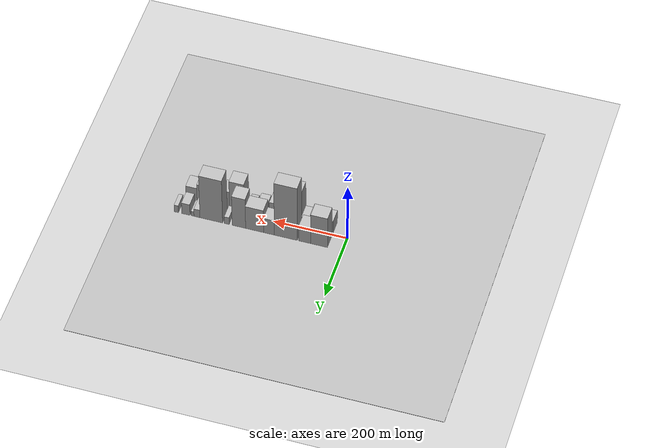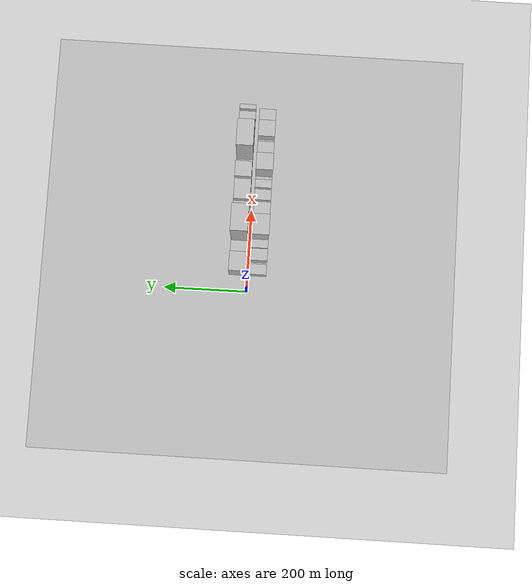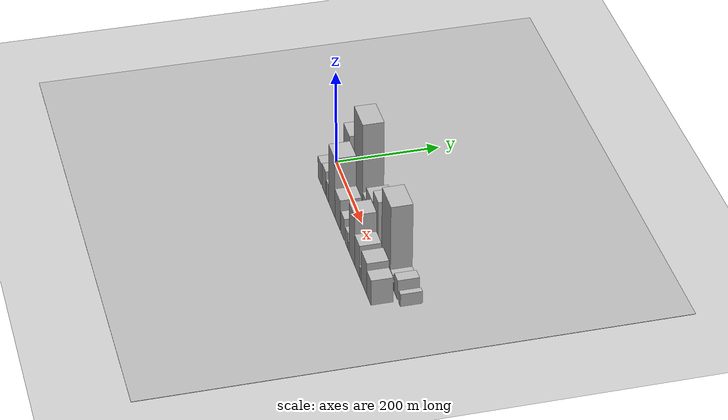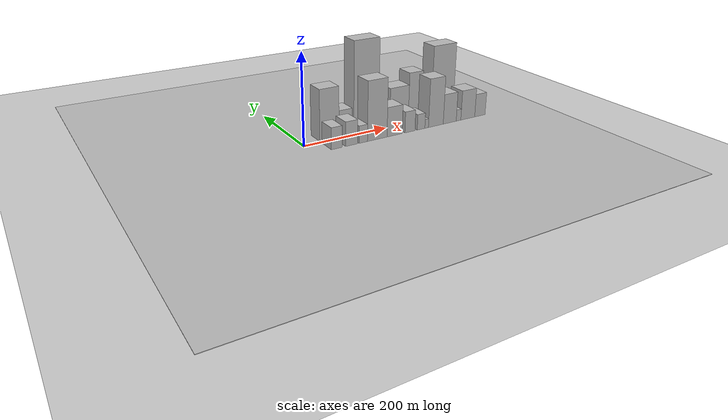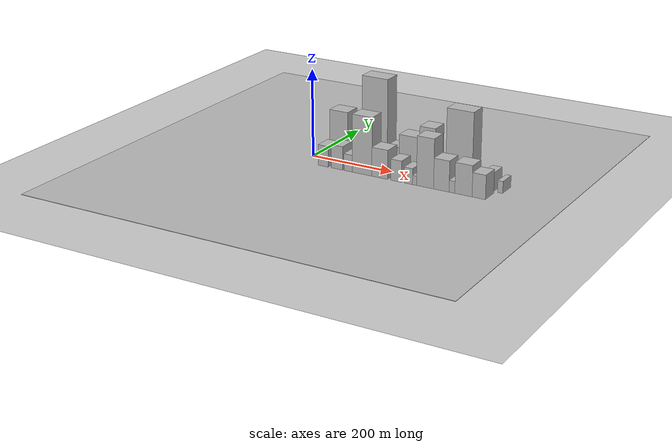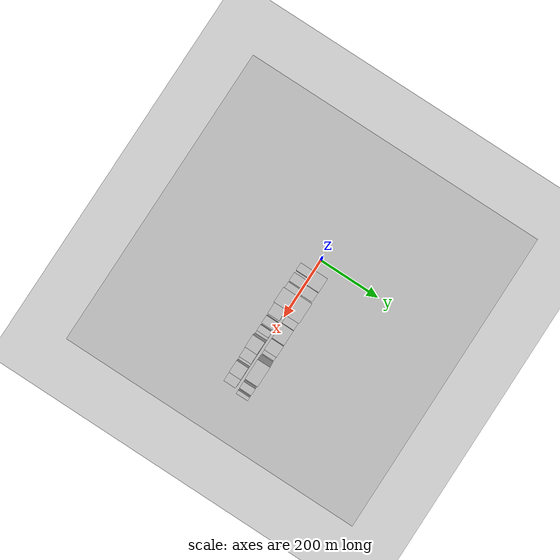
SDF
<?xml version="1.0" encoding="utf-8"?>

<sdf version="1.6">

   <world name="default">

      <gui fullscreen="0">

         <camera name="user_camera">

            <pose>-15 0 4.57585 0 0 0</pose>

            <view_controller>orbit</view_controller>

         </camera>

      </gui>

      <scene>

         <sky>

           <clouds>

             <speed>12</speed>

           </clouds>

         </sky>

         <ambient>0.4 0.4 0.4 1</ambient>

         <background>0.7 0.7 0.7 1</background>

         <shadows>1</shadows>

      </scene>

      <gravity>0 0 -9.8066</gravity>

      <magnetic_field>6e-06 2.3e-05 -4.2e-05</magnetic_field>

      <physics default="0" name="default_physics" type="ode">

         <ode>

            <solver>

               <type>quick</type>

               <iters>10</iters>

               <sor>1.0</sor>

               <use_dynamic_moi_rescaling>0</use_dynamic_moi_rescaling>

            </solver>

            <constraints>

               <cfm>0</cfm>

               <erp>0.2</erp>

               <contact_max_correcting_vel>100</contact_max_correcting_vel>

               <contact_surface_layer>0.001</contact_surface_layer>

            </constraints>

         </ode>

         <max_step_size>0.004</max_step_size>

         <real_time_factor>1</real_time_factor>

         <real_time_update_rate>250</real_time_update_rate>

      </physics>

      <light name="sun" type="directional">

         <cast_shadows>1</cast_shadows>

         <pose>0 0 10 0 0 0</pose>

         <diffuse>0.8 0.8 0.8 1</diffuse>

         <specular>0.2 0.2 0.2 1</specular>

         <attenuation>

            <range>1000</range>

            <constant>0.9</constant>

            <linear>0.01</linear>

            <quadratic>0.001</quadratic>

         </attenuation>

         <direction>-0.5 0.1 -0.9</direction>

      </light>

      <include>

         <name>ground_plane_1</name>

         <uri>model://HANNAS_ground_plane</uri>

         <pose>0 0 0  0 0 0</pose>

      </include>

      <include>

         <name>ground_plane_2</name>

         <uri>model://HANNAS_ground_plane</uri>

         <pose>100 0 0  0 0 0</pose>

      </include>

      <model name="building_1">

         <static>1</static>

         <pose frame="">62.7989 24.5000 0 0.000000 0.000000 1.570796</pose>

         <link name="link">

            <pose frame="">0 0 57.00 0 0 0</pose>

            <collision name="collision">

               <geometry>

                  <box>

                     <size>40.0000 45.5979 114.0000</size>

                  </box>

               </geometry>

               <max_contacts>10</max_contacts>

               <surface>

                  <contact>

                     <ode/>

                  </contact>

                  <bounce/>

                  <friction>

                     <torsional>

                        <ode/>

                     </torsional>

                     <ode/>

                  </friction>

               </surface>

            </collision>

            <visual name="visual">

               <cast_shadows>0</cast_shadows>

               <geometry>

                  <box>

                     <size>40.0000 45.5979 114.0000</size>

                  </box>

               </geometry>

               <material>

                  <script>

                     <uri>model://HANNAS_wall/materials/scripts</uri>

                     <uri>model://HANNAS_wall/materials/textures</uri>

                     <name>vrc/HANNAS_wall</name>

                  </script>

               </material>

            </visual>

            <self_collide>0</self_collide>

            <enable_wind>0</enable_wind>

            <kinematic>0</kinematic>

         </link>

      </model>

      <model name="building_2">

         <static>1</static>

         <pose frame="">101.5984 24.5000 0 0.000000 0.000000 1.570796</pose>

         <link name="link">

            <pose frame="">0 0 30.00 0 0 0</pose>

            <collision name="collision">

               <geometry>

                  <box>

                     <size>40.0000 32.0010 60.0000</size>

                  </box>

               </geometry>

               <max_contacts>10</max_contacts>

               <surface>

                  <contact>

                     <ode/>

                  </contact>

                  <bounce/>

                  <friction>

                     <torsional>

                        <ode/>

                     </torsional>

                     <ode/>

                  </friction>

               </surface>

            </collision>

            <visual name="visual">

               <cast_shadows>0</cast_shadows>

               <geometry>

                  <box>

                     <size>40.0000 32.0010 60.0000</size>

                  </box>

               </geometry>

               <material>

                  <script>

                     <uri>model://HANNAS_wall/materials/scripts</uri>

                     <uri>model://HANNAS_wall/materials/textures</uri>

                     <name>vrc/HANNAS_wall</name>

                  </script>

               </material>

            </visual>

            <self_collide>0</self_collide>

            <enable_wind>0</enable_wind>

            <kinematic>0</kinematic>

         </link>

      </model>

      <model name="building_3">

         <static>1</static>

         <pose frame="">152.7841 24.5000 0 0.000000 0.000000 1.570796</pose>

         <link name="link">

            <pose frame="">0 0 102.00 0 0 0</pose>

            <collision name="collision">

               <geometry>

                  <box>

                     <size>40.0000 62.3705 204.0000</size>

                  </box>

               </geometry>

               <max_contacts>10</max_contacts>

               <surface>

                  <contact>

                     <ode/>

                  </contact>

                  <bounce/>

                  <friction>

                     <torsional>

                        <ode/>

                     </torsional>

                     <ode/>

                  </friction>

               </surface>

            </collision>

            <visual name="visual">

               <cast_shadows>0</cast_shadows>

               <geometry>

                  <box>

                     <size>40.0000 62.3705 204.0000</size>

                  </box>

               </geometry>

               <material>

                  <script>

                     <uri>model://HANNAS_wall/materials/scripts</uri>

                     <uri>model://HANNAS_wall/materials/textures</uri>

                     <name>vrc/HANNAS_wall</name>

                  </script>

               </material>

            </visual>

            <self_collide>0</self_collide>

            <enable_wind>0</enable_wind>

            <kinematic>0</kinematic>

         </link>

      </model>

      <model name="building_4">

         <static>1</static>

         <pose frame="">198.4600 24.5000 0 0.000000 0.000000 1.570796</pose>

         <link name="link">

            <pose frame="">0 0 28.50 0 0 0</pose>

            <collision name="collision">

               <geometry>

                  <box>

                     <size>40.0000 28.9812 57.0000</size>

                  </box>

               </geometry>

               <max_contacts>10</max_contacts>

               <surface>

                  <contact>

                     <ode/>

                  </contact>

                  <bounce/>

                  <friction>

                     <torsional>

                        <ode/>

                     </torsional>

                     <ode/>

                  </friction>

               </surface>

            </collision>

            <visual name="visual">

               <cast_shadows>0</cast_shadows>

               <geometry>

                  <box>

                     <size>40.0000 28.9812 57.0000</size>

                  </box>

               </geometry>

               <material>

                  <script>

                     <uri>model://HANNAS_wall/materials/scripts</uri>

                     <uri>model://HANNAS_wall/materials/textures</uri>

                     <name>vrc/HANNAS_wall</name>

                  </script>

               </material>

            </visual>

            <self_collide>0</self_collide>

            <enable_wind>0</enable_wind>

            <kinematic>0</kinematic>

         </link>

      </model>

      <model name="building_5">

         <static>1</static>

         <pose frame="">237.4523 24.5000 0 0.000000 0.000000 1.570796</pose>

         <link name="link">

            <pose frame="">0 0 43.50 0 0 0</pose>

            <collision name="collision">

               <geometry>

                  <box>

                     <size>40.0000 49.0035 87.0000</size>

                  </box>

               </geometry>

               <max_contacts>10</max_contacts>

               <surface>

                  <contact>

                     <ode/>

                  </contact>

                  <bounce/>

                  <friction>

                     <torsional>

                        <ode/>

                     </torsional>

                     <ode/>

                  </friction>

               </surface>

            </collision>

            <visual name="visual">

               <cast_shadows>0</cast_shadows>

               <geometry>

                  <box>

                     <size>40.0000 49.0035 87.0000</size>

                  </box>

               </geometry>

               <material>

                  <script>

                     <uri>model://HANNAS_wall/materials/scripts</uri>

                     <uri>model://HANNAS_wall/materials/textures</uri>

                     <name>vrc/HANNAS_wall</name>

                  </script>

               </material>

            </visual>

            <self_collide>0</self_collide>

            <enable_wind>0</enable_wind>

            <kinematic>0</kinematic>

         </link>

      </model>

      <model name="building_6">

         <static>1</static>

         <pose frame="">280.3207 24.5000 0 0.000000 0.000000 1.570796</pose>

         <link name="link">

            <pose frame="">0 0 57.00 0 0 0</pose>

            <collision name="collision">

               <geometry>

                  <box>

                     <size>40.0000 36.7334 114.0000</size>

                  </box>

               </geometry>

               <max_contacts>10</max_contacts>

               <surface>

                  <contact>

                     <ode/>

                  </contact>

                  <bounce/>

                  <friction>

                     <torsional>

                        <ode/>

                     </torsional>

                     <ode/>

                  </friction>

               </surface>

            </collision>

            <visual name="visual">

               <cast_shadows>0</cast_shadows>

               <geometry>

                  <box>

                     <size>40.0000 36.7334 114.0000</size>

                  </box>

               </geometry>

               <material>

                  <script>

                     <uri>model://HANNAS_wall/materials/scripts</uri>

                     <uri>model://HANNAS_wall/materials/textures</uri>

                     <name>vrc/HANNAS_wall</name>

                  </script>

               </material>

            </visual>

            <self_collide>0</self_collide>

            <enable_wind>0</enable_wind>

            <kinematic>0</kinematic>

         </link>

      </model>

      <model name="building_7">

         <static>1</static>

         <pose frame="">313.1834 24.5000 0 0.000000 0.000000 1.570796</pose>

         <link name="link">

            <pose frame="">0 0 13.50 0 0 0</pose>

            <collision name="collision">

               <geometry>

                  <box>

                     <size>40.0000 12.9920 27.0000</size>

                  </box>

               </geometry>

               <max_contacts>10</max_contacts>

               <surface>

                  <contact>

                     <ode/>

                  </contact>

                  <bounce/>

                  <friction>

                     <torsional>

                        <ode/>

                     </torsional>

                     <ode/>

                  </friction>

               </surface>

            </collision>

            <visual name="visual">

               <cast_shadows>0</cast_shadows>

               <geometry>

                  <box>

                     <size>40.0000 12.9920 27.0000</size>

                  </box>

               </geometry>

               <material>

                  <script>

                     <uri>model://HANNAS_wall/materials/scripts</uri>

                     <uri>model://HANNAS_wall/materials/textures</uri>

                     <name>vrc/HANNAS_wall</name>

                  </script>

               </material>

            </visual>

            <self_collide>0</self_collide>

            <enable_wind>0</enable_wind>

            <kinematic>0</kinematic>

         </link>

      </model>

      <model name="building_8">

         <static>1</static>

         <pose frame="">355.6278 24.5000 0 0.000000 0.000000 1.570796</pose>

         <link name="link">

            <pose frame="">0 0 82.50 0 0 0</pose>

            <collision name="collision">

               <geometry>

                  <box>

                     <size>40.0000 61.8968 165.0000</size>

                  </box>

               </geometry>

               <max_contacts>10</max_contacts>

               <surface>

                  <contact>

                     <ode/>

                  </contact>

                  <bounce/>

                  <friction>

                     <torsional>

                        <ode/>

                     </torsional>

                     <ode/>

                  </friction>

               </surface>

            </collision>

            <visual name="visual">

               <cast_shadows>0</cast_shadows>

               <geometry>

                  <box>

                     <size>40.0000 61.8968 165.0000</size>

                  </box>

               </geometry>

               <material>

                  <script>

                     <uri>model://HANNAS_wall/materials/scripts</uri>

                     <uri>model://HANNAS_wall/materials/textures</uri>

                     <name>vrc/HANNAS_wall</name>

                  </script>

               </material>

            </visual>

            <self_collide>0</self_collide>

            <enable_wind>0</enable_wind>

            <kinematic>0</kinematic>

         </link>

      </model>

      <model name="building_9">

         <static>1</static>

         <pose frame="">394.6969 24.5000 0 0.000000 0.000000 1.570796</pose>

         <link name="link">

            <pose frame="">0 0 15.00 0 0 0</pose>

            <collision name="collision">

               <geometry>

                  <box>

                     <size>40.0000 16.2416 30.0000</size>

                  </box>

               </geometry>

               <max_contacts>10</max_contacts>

               <surface>

                  <contact>

                     <ode/>

                  </contact>

                  <bounce/>

                  <friction>

                     <torsional>

                        <ode/>

                     </torsional>

                     <ode/>

                  </friction>

               </surface>

            </collision>

            <visual name="visual">

               <cast_shadows>0</cast_shadows>

               <geometry>

                  <box>

                     <size>40.0000 16.2416 30.0000</size>

                  </box>

               </geometry>

               <material>

                  <script>

                     <uri>model://HANNAS_wall/materials/scripts</uri>

                     <uri>model://HANNAS_wall/materials/textures</uri>

                     <name>vrc/HANNAS_wall</name>

                  </script>

               </material>

            </visual>

            <self_collide>0</self_collide>

            <enable_wind>0</enable_wind>

            <kinematic>0</kinematic>

         </link>

      </model>

      <model name="building_10">

         <static>1</static>

         <pose frame="">406.7165 24.5000 0 0.000000 0.000000 1.570796</pose>

         <link name="link">

            <pose frame="">0 0 9.00 0 0 0</pose>

            <collision name="collision">

               <geometry>

                  <box>

                     <size>40.0000 7.7976 18.0000</size>

                  </box>

               </geometry>

               <max_contacts>10</max_contacts>

               <surface>

                  <contact>

                     <ode/>

                  </contact>

                  <bounce/>

                  <friction>

                     <torsional>

                        <ode/>

                     </torsional>

                     <ode/>

                  </friction>

               </surface>

            </collision>

            <visual name="visual">

               <cast_shadows>0</cast_shadows>

               <geometry>

                  <box>

                     <size>40.0000 7.7976 18.0000</size>

                  </box>

               </geometry>

               <material>

                  <script>

                     <uri>model://HANNAS_wall/materials/scripts</uri>

                     <uri>model://HANNAS_wall/materials/textures</uri>

                     <name>vrc/HANNAS_wall</name>

                  </script>

               </material>

            </visual>

            <self_collide>0</self_collide>

            <enable_wind>0</enable_wind>

            <kinematic>0</kinematic>

         </link>

      </model>

      <model name="building_11">

         <static>1</static>

         <pose frame="">424.9896 24.5000 0 0.000000 0.000000 1.570796</pose>

         <link name="link">

            <pose frame="">0 0 21.00 0 0 0</pose>

            <collision name="collision">

               <geometry>

                  <box>

                     <size>40.0000 22.7486 42.0000</size>

                  </box>

               </geometry>

               <max_contacts>10</max_contacts>

               <surface>

                  <contact>

                     <ode/>

                  </contact>

                  <bounce/>

                  <friction>

                     <torsional>

                        <ode/>

                     </torsional>

                     <ode/>

                  </friction>

               </surface>

            </collision>

            <visual name="visual">

               <cast_shadows>0</cast_shadows>

               <geometry>

                  <box>

                     <size>40.0000 22.7486 42.0000</size>

                  </box>

               </geometry>

               <material>

                  <script>

                     <uri>model://HANNAS_wall/materials/scripts</uri>

                     <uri>model://HANNAS_wall/materials/textures</uri>

                     <name>vrc/HANNAS_wall</name>

                  </script>

               </material>

            </visual>

            <self_collide>0</self_collide>

            <enable_wind>0</enable_wind>

            <kinematic>0</kinematic>

         </link>

      </model>

      <model name="building_12">

         <static>1</static>

         <pose frame="">451.2138 24.5000 0 0.000000 0.000000 1.570796</pose>

         <link name="link">

            <pose frame="">0 0 13.50 0 0 0</pose>

            <collision name="collision">

               <geometry>

                  <box>

                     <size>40.0000 11.6997 27.0000</size>

                  </box>

               </geometry>

               <max_contacts>10</max_contacts>

               <surface>

                  <contact>

                     <ode/>

                  </contact>

                  <bounce/>

                  <friction>

                     <torsional>

                        <ode/>

                     </torsional>

                     <ode/>

                  </friction>

               </surface>

            </collision>

            <visual name="visual">

               <cast_shadows>0</cast_shadows>

               <geometry>

                  <box>

                     <size>40.0000 11.6997 27.0000</size>

                  </box>

               </geometry>

               <material>

                  <script>

                     <uri>model://HANNAS_wall/materials/scripts</uri>

                     <uri>model://HANNAS_wall/materials/textures</uri>

                     <name>vrc/HANNAS_wall</name>

                  </script>

               </material>

            </visual>

            <self_collide>0</self_collide>

            <enable_wind>0</enable_wind>

            <kinematic>0</kinematic>

         </link>

      </model>

      <model name="building_13">

         <static>1</static>

         <pose frame="">52.5871 -24.5000 0 0.000000 0.000000 1.570796</pose>

         <link name="link">

            <pose frame="">0 0 24.00 0 0 0</pose>

            <collision name="collision">

               <geometry>

                  <box>

                     <size>40.0000 25.1742 48.0000</size>

                  </box>

               </geometry>

               <max_contacts>10</max_contacts>

               <surface>

                  <contact>

                     <ode/>

                  </contact>

                  <bounce/>

                  <friction>

                     <torsional>

                        <ode/>

                     </torsional>

                     <ode/>

                  </friction>

               </surface>

            </collision>

            <visual name="visual">

               <cast_shadows>0</cast_shadows>

               <geometry>

                  <box>

                     <size>40.0000 25.1742 48.0000</size>

                  </box>

               </geometry>

               <material>

                  <script>

                     <uri>model://HANNAS_wall/materials/scripts</uri>

                     <uri>model://HANNAS_wall/materials/textures</uri>

                     <name>vrc/HANNAS_wall</name>

                  </script>

               </material>

            </visual>

            <self_collide>0</self_collide>

            <enable_wind>0</enable_wind>

            <kinematic>0</kinematic>

         </link>

      </model>

      <model name="building_14">

         <static>1</static>

         <pose frame="">87.5404 -24.5000 0 0.000000 0.000000 1.570796</pose>

         <link name="link">

            <pose frame="">0 0 27.00 0 0 0</pose>

            <collision name="collision">

               <geometry>

                  <box>

                     <size>40.0000 28.7324 54.0000</size>

                  </box>

               </geometry>

               <max_contacts>10</max_contacts>

               <surface>

                  <contact>

                     <ode/>

                  </contact>

                  <bounce/>

                  <friction>

                     <torsional>

                        <ode/>

                     </torsional>

                     <ode/>

                  </friction>

               </surface>

            </collision>

            <visual name="visual">

               <cast_shadows>0</cast_shadows>

               <geometry>

                  <box>

                     <size>40.0000 28.7324 54.0000</size>

                  </box>

               </geometry>

               <material>

                  <script>

                     <uri>model://HANNAS_wall/materials/scripts</uri>

                     <uri>model://HANNAS_wall/materials/textures</uri>

                     <name>vrc/HANNAS_wall</name>

                  </script>

               </material>

            </visual>

            <self_collide>0</self_collide>

            <enable_wind>0</enable_wind>

            <kinematic>0</kinematic>

         </link>

      </model>

      <model name="building_15">

         <static>1</static>

         <pose frame="">115.1558 -24.5000 0 0.000000 0.000000 1.570796</pose>

         <link name="link">

            <pose frame="">0 0 19.50 0 0 0</pose>

            <collision name="collision">

               <geometry>

                  <box>

                     <size>40.0000 20.4984 39.0000</size>

                  </box>

               </geometry>

               <max_contacts>10</max_contacts>

               <surface>

                  <contact>

                     <ode/>

                  </contact>

                  <bounce/>

                  <friction>

                     <torsional>

                        <ode/>

                     </torsional>

                     <ode/>

                  </friction>

               </surface>

            </collision>

            <visual name="visual">

               <cast_shadows>0</cast_shadows>

               <geometry>

                  <box>

                     <size>40.0000 20.4984 39.0000</size>

                  </box>

               </geometry>

               <material>

                  <script>

                     <uri>model://HANNAS_wall/materials/scripts</uri>

                     <uri>model://HANNAS_wall/materials/textures</uri>

                     <name>vrc/HANNAS_wall</name>

                  </script>

               </material>

            </visual>

            <self_collide>0</self_collide>

            <enable_wind>0</enable_wind>

            <kinematic>0</kinematic>

         </link>

      </model>

      <model name="building_16">

         <static>1</static>

         <pose frame="">149.6265 -24.5000 0 0.000000 0.000000 1.570796</pose>

         <link name="link">

            <pose frame="">0 0 66.00 0 0 0</pose>

            <collision name="collision">

               <geometry>

                  <box>

                     <size>40.0000 48.4431 132.0000</size>

                  </box>

               </geometry>

               <max_contacts>10</max_contacts>

               <surface>

                  <contact>

                     <ode/>

                  </contact>

                  <bounce/>

                  <friction>

                     <torsional>

                        <ode/>

                     </torsional>

                     <ode/>

                  </friction>

               </surface>

            </collision>

            <visual name="visual">

               <cast_shadows>0</cast_shadows>

               <geometry>

                  <box>

                     <size>40.0000 48.4431 132.0000</size>

                  </box>

               </geometry>

               <material>

                  <script>

                     <uri>model://HANNAS_wall/materials/scripts</uri>

                     <uri>model://HANNAS_wall/materials/textures</uri>

                     <name>vrc/HANNAS_wall</name>

                  </script>

               </material>

            </visual>

            <self_collide>0</self_collide>

            <enable_wind>0</enable_wind>

            <kinematic>0</kinematic>

         </link>

      </model>

      <model name="building_17">

         <static>1</static>

         <pose frame="">193.1631 -24.5000 0 0.000000 0.000000 1.570796</pose>

         <link name="link">

            <pose frame="">0 0 33.00 0 0 0</pose>

            <collision name="collision">

               <geometry>

                  <box>

                     <size>40.0000 38.6301 66.0000</size>

                  </box>

               </geometry>

               <max_contacts>10</max_contacts>

               <surface>

                  <contact>

                     <ode/>

                  </contact>

                  <bounce/>

                  <friction>

                     <torsional>

                        <ode/>

                     </torsional>

                     <ode/>

                  </friction>

               </surface>

            </collision>

            <visual name="visual">

               <cast_shadows>0</cast_shadows>

               <geometry>

                  <box>

                     <size>40.0000 38.6301 66.0000</size>

                  </box>

               </geometry>

               <material>

                  <script>

                     <uri>model://HANNAS_wall/materials/scripts</uri>

                     <uri>model://HANNAS_wall/materials/textures</uri>

                     <name>vrc/HANNAS_wall</name>

                  </script>

               </material>

            </visual>

            <self_collide>0</self_collide>

            <enable_wind>0</enable_wind>

            <kinematic>0</kinematic>

         </link>

      </model>

      <model name="building_18">

         <static>1</static>

         <pose frame="">232.5741 -24.5000 0 0.000000 0.000000 1.570796</pose>

         <link name="link">

            <pose frame="">0 0 24.00 0 0 0</pose>

            <collision name="collision">

               <geometry>

                  <box>

                     <size>40.0000 26.1918 48.0000</size>

                  </box>

               </geometry>

               <max_contacts>10</max_contacts>

               <surface>

                  <contact>

                     <ode/>

                  </contact>

                  <bounce/>

                  <friction>

                     <torsional>

                        <ode/>

                     </torsional>

                     <ode/>

                  </friction>

               </surface>

            </collision>

            <visual name="visual">

               <cast_shadows>0</cast_shadows>

               <geometry>

                  <box>

                     <size>40.0000 26.1918 48.0000</size>

                  </box>

               </geometry>

               <material>

                  <script>

                     <uri>model://HANNAS_wall/materials/scripts</uri>

                     <uri>model://HANNAS_wall/materials/textures</uri>

                     <name>vrc/HANNAS_wall</name>

                  </script>

               </material>

            </visual>

            <self_collide>0</self_collide>

            <enable_wind>0</enable_wind>

            <kinematic>0</kinematic>

         </link>

      </model>

      <model name="building_19">

         <static>1</static>

         <pose frame="">261.7721 -24.5000 0 0.000000 0.000000 1.570796</pose>

         <link name="link">

            <pose frame="">0 0 18.00 0 0 0</pose>

            <collision name="collision">

               <geometry>

                  <box>

                     <size>40.0000 20.2042 36.0000</size>

                  </box>

               </geometry>

               <max_contacts>10</max_contacts>

               <surface>

                  <contact>

                     <ode/>

                  </contact>

                  <bounce/>

                  <friction>

                     <torsional>

                        <ode/>

                     </torsional>

                     <ode/>

                  </friction>

               </surface>

            </collision>

            <visual name="visual">

               <cast_shadows>0</cast_shadows>

               <geometry>

                  <box>

                     <size>40.0000 20.2042 36.0000</size>

                  </box>

               </geometry>

               <material>

                  <script>

                     <uri>model://HANNAS_wall/materials/scripts</uri>

                     <uri>model://HANNAS_wall/materials/textures</uri>

                     <name>vrc/HANNAS_wall</name>

                  </script>

               </material>

            </visual>

            <self_collide>0</self_collide>

            <enable_wind>0</enable_wind>

            <kinematic>0</kinematic>

         </link>

      </model>

      <model name="building_20">

         <static>1</static>

         <pose frame="">276.6517 -24.5000 0 0.000000 0.000000 1.570796</pose>

         <link name="link">

            <pose frame="">0 0 10.50 0 0 0</pose>

            <collision name="collision">

               <geometry>

                  <box>

                     <size>40.0000 9.5551 21.0000</size>

                  </box>

               </geometry>

               <max_contacts>10</max_contacts>

               <surface>

                  <contact>

                     <ode/>

                  </contact>

                  <bounce/>

                  <friction>

                     <torsional>

                        <ode/>

                     </torsional>

                     <ode/>

                  </friction>

               </surface>

            </collision>

            <visual name="visual">

               <cast_shadows>0</cast_shadows>

               <geometry>

                  <box>

                     <size>40.0000 9.5551 21.0000</size>

                  </box>

               </geometry>

               <material>

                  <script>

                     <uri>model://HANNAS_wall/materials/scripts</uri>

                     <uri>model://HANNAS_wall/materials/textures</uri>

                     <name>vrc/HANNAS_wall</name>

                  </script>

               </material>

            </visual>

            <self_collide>0</self_collide>

            <enable_wind>0</enable_wind>

            <kinematic>0</kinematic>

         </link>

      </model>

      <model name="building_21">

         <static>1</static>

         <pose frame="">301.5318 -24.5000 0 0.000000 0.000000 1.570796</pose>

         <link name="link">

            <pose frame="">0 0 55.50 0 0 0</pose>

            <collision name="collision">

               <geometry>

                  <box>

                     <size>40.0000 40.2051 111.0000</size>

                  </box>

               </geometry>

               <max_contacts>10</max_contacts>

               <surface>

                  <contact>

                     <ode/>

                  </contact>

                  <bounce/>

                  <friction>

                     <torsional>

                        <ode/>

                     </torsional>

                     <ode/>

                  </friction>

               </surface>

            </collision>

            <visual name="visual">

               <cast_shadows>0</cast_shadows>

               <geometry>

                  <box>

                     <size>40.0000 40.2051 111.0000</size>

                  </box>

               </geometry>

               <material>

                  <script>

                     <uri>model://HANNAS_wall/materials/scripts</uri>

                     <uri>model://HANNAS_wall/materials/textures</uri>

                     <name>vrc/HANNAS_wall</name>

                  </script>

               </material>

            </visual>

            <self_collide>0</self_collide>

            <enable_wind>0</enable_wind>

            <kinematic>0</kinematic>

         </link>

      </model>

      <model name="building_22">

         <static>1</static>

         <pose frame="">339.6920 -24.5000 0 0.000000 0.000000 1.570796</pose>

         <link name="link">

            <pose frame="">0 0 34.50 0 0 0</pose>

            <collision name="collision">

               <geometry>

                  <box>

                     <size>40.0000 36.1153 69.0000</size>

                  </box>

               </geometry>

               <max_contacts>10</max_contacts>

               <surface>

                  <contact>

                     <ode/>

                  </contact>

                  <bounce/>

                  <friction>

                     <torsional>

                        <ode/>

                     </torsional>

                     <ode/>

                  </friction>

               </surface>

            </collision>

            <visual name="visual">

               <cast_shadows>0</cast_shadows>

               <geometry>

                  <box>

                     <size>40.0000 36.1153 69.0000</size>

                  </box>

               </geometry>

               <material>

                  <script>

                     <uri>model://HANNAS_wall/materials/scripts</uri>

                     <uri>model://HANNAS_wall/materials/textures</uri>

                     <name>vrc/HANNAS_wall</name>

                  </script>

               </material>

            </visual>

            <self_collide>0</self_collide>

            <enable_wind>0</enable_wind>

            <kinematic>0</kinematic>

         </link>

      </model>

      <model name="building_23">

         <static>1</static>

         <pose frame="">364.2765 -24.5000 0 0.000000 0.000000 1.570796</pose>

         <link name="link">

            <pose frame="">0 0 13.50 0 0 0</pose>

            <collision name="collision">

               <geometry>

                  <box>

                     <size>40.0000 13.0538 27.0000</size>

                  </box>

               </geometry>

               <max_contacts>10</max_contacts>

               <surface>

                  <contact>

                     <ode/>

                  </contact>

                  <bounce/>

                  <friction>

                     <torsional>

                        <ode/>

                     </torsional>

                     <ode/>

                  </friction>

               </surface>

            </collision>

            <visual name="visual">

               <cast_shadows>0</cast_shadows>

               <geometry>

                  <box>

                     <size>40.0000 13.0538 27.0000</size>

                  </box>

               </geometry>

               <material>

                  <script>

                     <uri>model://HANNAS_wall/materials/scripts</uri>

                     <uri>model://HANNAS_wall/materials/textures</uri>

                     <name>vrc/HANNAS_wall</name>

                  </script>

               </material>

            </visual>

            <self_collide>0</self_collide>

            <enable_wind>0</enable_wind>

            <kinematic>0</kinematic>

         </link>

      </model>

      <model name="building_24">

         <static>1</static>

         <pose frame="">390.6673 -24.5000 0 0.000000 0.000000 1.570796</pose>

         <link name="link">

            <pose frame="">0 0 34.50 0 0 0</pose>

            <collision name="collision">

               <geometry>

                  <box>

                     <size>40.0000 39.7278 69.0000</size>

                  </box>

               </geometry>

               <max_contacts>10</max_contacts>

               <surface>

                  <contact>

                     <ode/>

                  </contact>

                  <bounce/>

                  <friction>

                     <torsional>

                        <ode/>

                     </torsional>

                     <ode/>

                  </friction>

               </surface>

            </collision>

            <visual name="visual">

               <cast_shadows>0</cast_shadows>

               <geometry>

                  <box>

                     <size>40.0000 39.7278 69.0000</size>

                  </box>

               </geometry>

               <material>

                  <script>

                     <uri>model://HANNAS_wall/materials/scripts</uri>

                     <uri>model://HANNAS_wall/materials/textures</uri>

                     <name>vrc/HANNAS_wall</name>

                  </script>

               </material>

            </visual>

            <self_collide>0</self_collide>

            <enable_wind>0</enable_wind>

            <kinematic>0</kinematic>

         </link>

      </model>

      <model name="building_25">

         <static>1</static>

         <pose frame="">425.7259 -24.5000 0 0.000000 0.000000 1.570796</pose>

         <link name="link">

            <pose frame="">0 0 27.00 0 0 0</pose>

            <collision name="collision">

               <geometry>

                  <box>

                     <size>40.0000 30.3894 54.0000</size>

                  </box>

               </geometry>

               <max_contacts>10</max_contacts>

               <surface>

                  <contact>

                     <ode/>

                  </contact>

                  <bounce/>

                  <friction>

                     <torsional>

                        <ode/>

                     </torsional>

                     <ode/>

                  </friction>

               </surface>

            </collision>

            <visual name="visual">

               <cast_shadows>0</cast_shadows>

               <geometry>

                  <box>

                     <size>40.0000 30.3894 54.0000</size>

                  </box>

               </geometry>

               <material>

                  <script>

                     <uri>model://HANNAS_wall/materials/scripts</uri>

                     <uri>model://HANNAS_wall/materials/textures</uri>

                     <name>vrc/HANNAS_wall</name>

                  </script>

               </material>

            </visual>

            <self_collide>0</self_collide>

            <enable_wind>0</enable_wind>

            <kinematic>0</kinematic>

         </link>

      </model>

   </world>

</sdf>

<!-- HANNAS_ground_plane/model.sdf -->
<sdf version="1.4">
<model name="HANNAS_ground_plane">
  <static>true</static>
    <link name="link">
      <collision name="collision">
        <geometry>
          <plane>
            <normal>0 0 1</normal>
            <size>1000 1000</size>
          </plane>
        </geometry>
        <surface>
          <friction>
            <ode>
              <mu>100</mu>
              <mu2>50</mu2>
            </ode>
          </friction>
        </surface>
      </collision>
      <visual name="visual">
        <cast_shadows>false</cast_shadows>
        <geometry>
          <plane>
            <normal>0 0 1</normal>
            <size>1000 1000</size>
          </plane>
        </geometry>
        <material>
          <script>
            <uri>model://HANNAS_ground_plane/materials/scripts/HANNAS_ground_plane.material</uri>
	    <uri>model://HANNAS_ground_plane/materials/textures</uri>
            <name>HANNASGroundPlane/Image</name>
          </script>
        </material>
      </visual>
    </link>
  </model>
</sdf>
